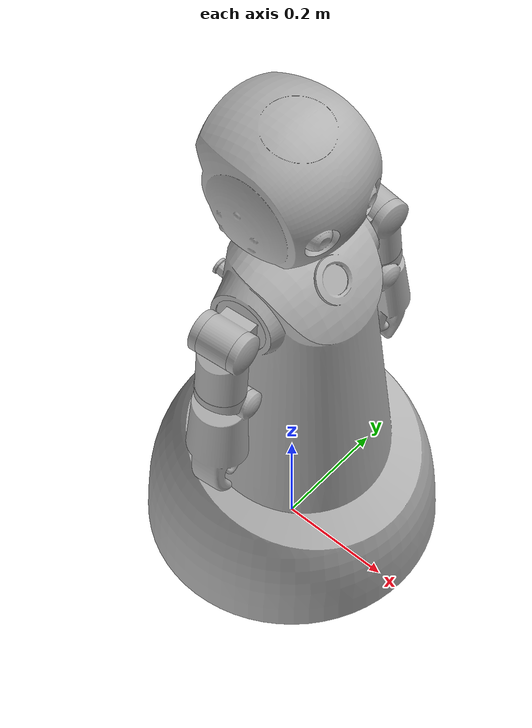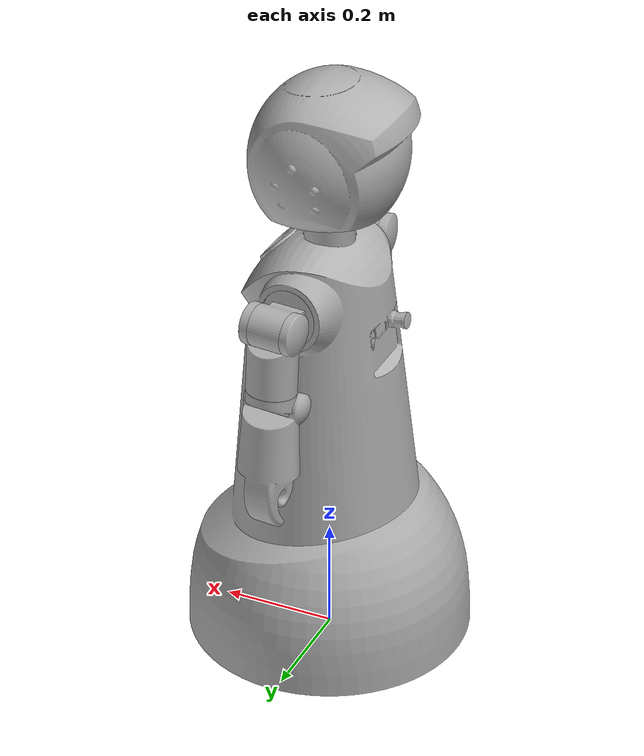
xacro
<?xml version="1.0" ?>
<robot name="robovie_r4" xmlns:xacro="http://www.ros.org/wiki/xacro">

<xacro:include filename="$(find r4_description)/urdf/robovie_r4_base.xacro" />

<!-- to fix robot in gazebo world -->

<!-- World fixed joint-->

<link name="dummy_link" />
<joint name="dummy_joint" type="fixed">
  <origin xyz="0.0 0.0 0.0" rpy="0 0 ${-pi/2}"/>
  <parent link="dummy_link"/>
  <child link="torso_link_r4"/>
</joint>

</robot>

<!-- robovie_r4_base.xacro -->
<robot name="robovie_r4" xmlns:xacro="http://www.ros.org/wiki/xacro">

<xacro:include filename="$(find r4_description)/urdf/materials.xacro" />

<!-- to fix robot in gazebo world -->

<!-- World fixed joint-->

<link name="tcp_left">
  <visual>
    <geometry>
      <box size="0.01 0.01 0.01"/>
    </geometry>
    <material name="red">
      <color rgba="1.0 0.0 0.0 0.6"/>
    </material>
  </visual>
</link>

<joint name="tcp_left_joint" type="fixed">
   <!-- X軸の正方向が前 -->
  <origin xyz="${-0.032-0.003262} ${-0.0375+0.037358} ${-0.168+0.000071}" rpy="0 0 0"/>
  <parent link="l_hand_1"/>
  <child link="tcp_left"/>
</joint>

<link name="tcp_right">
  <visual>
    <geometry>
      <box size="0.01 0.01 0.01"/>
    </geometry>
    <material name="red">
      <color rgba="1.0 0.0 0.0 0.6"/>
    </material>
  </visual>
</link>

<joint name="tcp_right_joint" type="fixed">
   <!-- X軸の正方向が前 -->
  <origin xyz="${0.032-0.003262} ${-0.0375+0.037358} ${-0.168+0.000071}" rpy="0 0 0"/>
  <parent link="r_hand_1"/>
  <child link="tcp_right"/>
</joint>

<link name="torso_link_r4">
  <inertial>
    <origin xyz="0.000614628156240865 0.001148796640096465 0.4251467803392016" rpy="0 0 0"/>
    <mass value="26.157484443567014"/>
    <inertia ixx="2.07336" iyy="2.086701" izz="0.73142" ixy="0.001276" iyz="-0.012697" ixz="-0.003299"/>
  </inertial>
  <visual>
    <origin xyz="0 0 0" rpy="0 0 0"/>
    <geometry>
      <mesh filename="package://r4_description/meshes/torso_link_r4.stl" scale="0.001 0.001 0.001"/>
    </geometry>
    <material name="silver-r4"/>
  </visual>
  <collision>
    <origin xyz="0 0 0" rpy="0 0 0"/>
    <geometry>
      <mesh filename="package://r4_description/meshes/torso_link_r4.stl" scale="0.001 0.001 0.001"/>
    </geometry>
  </collision>
</link>

<link name="l_shoulder_1">
  <inertial>
    <origin xyz="-0.037852630361978945 0.00325917485373633 0.0033240289687475055" rpy="0 0 0"/>
    <mass value="1.3261389056969144"/>
    <inertia ixx="0.001184" iyy="0.002087" izz="0.0021" ixy="7.9e-05" iyz="-7e-06" ixz="8.1e-05"/>
  </inertial>
  <visual>
    <origin xyz="0.134657 -0.011781 -0.696078" rpy="0 0 0"/>
    <geometry>
      <mesh filename="package://r4_description/meshes/l_shoulder_1.stl" scale="0.001 0.001 0.001"/>
    </geometry>
    <material name="silver-r4"/>
  </visual>
  <collision>
    <origin xyz="0.134657 -0.011781 -0.696078" rpy="0 0 0"/>
    <geometry>
      <mesh filename="package://r4_description/meshes/l_shoulder_1.stl" scale="0.001 0.001 0.001"/>
    </geometry>
  </collision>
</link>

<link name="r_shoulder_1">
  <inertial>
    <origin xyz="0.03784353770491708 0.0033633036532929993 0.0033238304731996182" rpy="0 0 0"/>
    <mass value="1.3261389056969144"/>
    <inertia ixx="0.001184" iyy="0.002087" izz="0.0021" ixy="-8e-05" iyz="-7e-06" ixz="-8.1e-05"/>
  </inertial>
  <visual>
    <origin xyz="-0.134657 -0.011781 -0.696078" rpy="0 0 0"/>
    <geometry>
      <mesh filename="package://r4_description/meshes/r_shoulder_1.stl" scale="0.001 0.001 0.001"/>
    </geometry>
    <material name="silver-r4"/>
  </visual>
  <collision>
    <origin xyz="-0.134657 -0.011781 -0.696078" rpy="0 0 0"/>
    <geometry>
      <mesh filename="package://r4_description/meshes/r_shoulder_1.stl" scale="0.001 0.001 0.001"/>
    </geometry>
  </collision>
</link>

<link name="neck_yaw_link_1">
  <inertial>
    <origin xyz="-0.001909747489438639 0.002260196795276822 0.016471266556445152" rpy="0 0 0"/>
    <mass value="0.14692716936201883"/>
    <inertia ixx="0.000101" iyy="5.2e-05" izz="8.9e-05" ixy="-0.0" iyz="0.0" ixz="0.0"/>
  </inertial>
  <visual>
    <origin xyz="-0.0 -0.0 -0.823" rpy="0 0 0"/>
    <geometry>
      <mesh filename="package://r4_description/meshes/neck_yaw_link_1.stl" scale="0.001 0.001 0.001"/>
    </geometry>
    <material name="silver-r4"/>
  </visual>
  <collision>
    <origin xyz="-0.0 -0.0 -0.823" rpy="0 0 0"/>
    <geometry>
      <mesh filename="package://r4_description/meshes/neck_yaw_link_1.stl" scale="0.001 0.001 0.001"/>
    </geometry>
  </collision>
</link>

<link name="neck_roll_link_1">
  <inertial>
    <origin xyz="0.0005064508038095865 -0.0221821481261072 0.01791091802139455" rpy="0 0 0"/>
    <mass value="1.1480815935567241"/>
    <inertia ixx="0.000617" iyy="0.000684" izz="0.000457" ixy="-0.0" iyz="1e-06" ixz="0.0"/>
  </inertial>
  <visual>
    <origin xyz="0.0 -0.0245 -0.85" rpy="0 0 0"/>
    <geometry>
      <mesh filename="package://r4_description/meshes/neck_roll_link_1.stl" scale="0.001 0.001 0.001"/>
    </geometry>
    <material name="silver-r4"/>
  </visual>
  <collision>
    <origin xyz="0.0 -0.0245 -0.85" rpy="0 0 0"/>
    <geometry>
      <mesh filename="package://r4_description/meshes/neck_roll_link_1.stl" scale="0.001 0.001 0.001"/>
    </geometry>
  </collision>
</link>

<link name="head_1">
  <inertial>
    <origin xyz="-0.026505019942840876 -0.0016225754455137511 0.09761714285669354" rpy="0 0 0"/>
    <mass value="7.576311537618501"/>
    <inertia ixx="0.051342" iyy="0.073001" izz="0.076119" ixy="4e-06" iyz="0.00224" ixz="-7e-06"/>
  </inertial>
  <visual>
    <origin xyz="-0.0265 -0.0 -0.85" rpy="0 0 0"/>
    <geometry>
      <mesh filename="package://r4_description/meshes/head_1.stl" scale="0.001 0.001 0.001"/>
    </geometry>
    <material name="silver-r4"/>
  </visual>
  <collision>
    <origin xyz="-0.0265 -0.0 -0.85" rpy="0 0 0"/>
    <geometry>
      <mesh filename="package://r4_description/meshes/head_1.stl" scale="0.001 0.001 0.001"/>
    </geometry>
  </collision>
</link>

<link name="l_arm_1">
  <inertial>
    <origin xyz="-0.01171737181229937 -0.029404568328405267 -0.05915031814076621" rpy="0 0 0"/>
    <mass value="0.7243594855307846"/>
    <inertia ixx="0.002358" iyy="0.001919" izz="0.001152" ixy="-3.9e-05" iyz="1.3e-05" ixz="-0.00016"/>
  </inertial>
  <visual>
    <origin xyz="0.182292 -0.015949 -0.700261" rpy="0 0 0"/>
    <geometry>
      <mesh filename="package://r4_description/meshes/l_arm_1.stl" scale="0.001 0.001 0.001"/>
    </geometry>
    <material name="silver-r4"/>
  </visual>
  <collision>
    <origin xyz="0.182292 -0.015949 -0.700261" rpy="0 0 0"/>
    <geometry>
      <mesh filename="package://r4_description/meshes/l_arm_1.stl" scale="0.001 0.001 0.001"/>
    </geometry>
  </collision>
</link>

<link name="r_arm_1">
  <inertial>
    <origin xyz="0.011717377079669272 -0.0294046286501487 -0.059150318025778414" rpy="0 0 0"/>
    <mass value="0.7243594855307846"/>
    <inertia ixx="0.002358" iyy="0.001919" izz="0.001152" ixy="3.9e-05" iyz="1.3e-05" ixz="0.00016"/>
  </inertial>
  <visual>
    <origin xyz="-0.182292 -0.015949 -0.700261" rpy="0 0 0"/>
    <geometry>
      <mesh filename="package://r4_description/meshes/r_arm_1.stl" scale="0.001 0.001 0.001"/>
    </geometry>
    <material name="silver-r4"/>
  </visual>
  <collision>
    <origin xyz="-0.182292 -0.015949 -0.700261" rpy="0 0 0"/>
    <geometry>
      <mesh filename="package://r4_description/meshes/r_arm_1.stl" scale="0.001 0.001 0.001"/>
    </geometry>
  </collision>
</link>

<link name="l_elbow_1">
  <inertial>
    <origin xyz="0.013707025391952676 -0.0012488485865315528 -0.02739437843448611" rpy="0 0 0"/>
    <mass value="1.3817415156964064"/>
    <inertia ixx="0.000976" iyy="0.000677" izz="0.001046" ixy="-2.6e-05" iyz="-8e-06" ixz="0.000103"/>
  </inertial>
  <visual>
    <origin xyz="0.192122 -0.016592 -0.587692" rpy="0 0 0"/>
    <geometry>
      <mesh filename="package://r4_description/meshes/l_elbow_1.stl" scale="0.001 0.001 0.001"/>
    </geometry>
    <material name="silver-r4"/>
  </visual>
  <collision>
    <origin xyz="0.192122 -0.016592 -0.587692" rpy="0 0 0"/>
    <geometry>
      <mesh filename="package://r4_description/meshes/l_elbow_1.stl" scale="0.001 0.001 0.001"/>
    </geometry>
  </collision>
</link>

<link name="r_elbow_1">
  <inertial>
    <origin xyz="-0.01370702179735625 -0.001248889751733982 -0.027394378356015325" rpy="0 0 0"/>
    <mass value="1.3817415156964064"/>
    <inertia ixx="0.000976" iyy="0.000677" izz="0.001046" ixy="2.6e-05" iyz="-8e-06" ixz="-0.000103"/>
  </inertial>
  <visual>
    <origin xyz="-0.192122 -0.016592 -0.587692" rpy="0 0 0"/>
    <geometry>
      <mesh filename="package://r4_description/meshes/r_elbow_1.stl" scale="0.001 0.001 0.001"/>
    </geometry>
    <material name="silver-r4"/>
  </visual>
  <collision>
    <origin xyz="-0.192122 -0.016592 -0.587692" rpy="0 0 0"/>
    <geometry>
      <mesh filename="package://r4_description/meshes/r_elbow_1.stl" scale="0.001 0.001 0.001"/>
    </geometry>
  </collision>
</link>

<link name="l_hand_1">
  <inertial>
    <origin xyz="-0.03076625385048895 -0.03513212246685853 -0.09224704680541085" rpy="0 0 0"/>
    <mass value="1.3532058766017583"/>
    <inertia ixx="0.005572" iyy="0.005107" izz="0.002078" ixy="-4.2e-05" iyz="3.8e-05" ixz="-0.000499"/>
  </inertial>
  <visual>
    <origin xyz="0.174797 -0.015021 -0.557059" rpy="0 0 0"/>
    <geometry>
      <mesh filename="package://r4_description/meshes/l_hand_1.stl" scale="0.001 0.001 0.001"/>
    </geometry>
    <material name="silver-r4"/>
  </visual>
  <collision>
    <origin xyz="0.174797 -0.015021 -0.557059" rpy="0 0 0"/>
    <geometry>
      <mesh filename="package://r4_description/meshes/l_hand_1.stl" scale="0.001 0.001 0.001"/>
    </geometry>
  </collision>
</link>

<link name="r_hand_1">
  <inertial>
    <origin xyz="0.030766274993907133 -0.03513236460057082 -0.09224704634384401" rpy="0 0 0"/>
    <mass value="1.3532058766017574"/>
    <inertia ixx="0.005572" iyy="0.005107" izz="0.002078" ixy="4.2e-05" iyz="3.8e-05" ixz="0.000499"/>
  </inertial>
  <visual>
    <origin xyz="-0.174797 -0.015021 -0.557059" rpy="0 0 0"/>
    <geometry>
      <mesh filename="package://r4_description/meshes/r_hand_1.stl" scale="0.001 0.001 0.001"/>
    </geometry>
    <material name="silver-r4"/>
  </visual>
  <collision>
    <origin xyz="-0.174797 -0.015021 -0.557059" rpy="0 0 0"/>
    <geometry>
      <mesh filename="package://r4_description/meshes/r_hand_1.stl" scale="0.001 0.001 0.001"/>
    </geometry>
  </collision>
</link>

<!-- joints *****************************************-->
<joint name="l_shoulder_pitch" type="revolute">
  <origin xyz="-0.134657 0.011781 0.696078" rpy="0 0 0"/>
  <parent link="torso_link_r4"/>
  <child link="l_shoulder_1"/>
  <axis xyz="-0.992404 0.086824 0.087156"/>
  <limit upper="${70*pi/180}" lower="${-250*pi/180}" effort="100" velocity="100"/>
</joint>

<joint name="l_shoulder_roll" type="revolute">
  <origin xyz="${-0.045008-0.002627} ${0.034253-0.030085} ${0.004126+0.000057}" rpy="0 0 0"/>
  <parent link="l_shoulder_1"/>
  <child link="l_arm_1"/>
  <axis xyz="0.08699 0.996207 -0.001899"/>
  <limit upper="${170*pi/180}" lower="${-10*pi/180}" effort="100" velocity="100"/>
</joint>

<joint name="l_elbow_yaw" type="revolute">
  <origin xyz="${-0.012457+0.002627} ${-0.029442+0.030085} ${-0.112512-0.000057}" rpy="0 0 0"/>
  <parent link="l_arm_1"/>
  <child link="l_elbow_1"/>
  <axis xyz="-0.08699 0.005697 -0.996193"/>
  <limit upper="${pi/2}" lower="${-pi/2}" effort="100" velocity="100"/>
</joint>

<joint name="l_elbow_bend" type="revolute">
  <origin xyz="${0.020587-0.003262} ${0.035787-0.037358} ${-0.030704-0.000071}" rpy="0 0 0"/>
  <parent link="l_elbow_1"/>
  <child link="l_hand_1"/>
  <axis xyz="0.08699 0.996207 -0.001899"/>
  <limit upper="${5*pi/180}" lower="${-125*pi/180}" effort="100" velocity="100"/>
</joint>

<joint name="r_shoulder_pitch" type="revolute">
  <origin xyz="0.134657 0.011781 0.696078" rpy="0 0 0"/>
  <parent link="torso_link_r4"/>
  <child link="r_shoulder_1"/>
  <axis xyz="0.992404 0.086824 0.087156"/>
  <limit upper="${250*pi/180}" lower="${-70*pi/180}" effort="100" velocity="100"/>
</joint>

<joint name="r_shoulder_roll" type="revolute">
  <origin xyz="${0.045008+0.002627} ${0.034253-0.030085} ${0.004126+0.000057}" rpy="0 0 0"/>
  <parent link="r_shoulder_1"/>
  <child link="r_arm_1"/>
  <axis xyz="-0.08699 0.996207 -0.001899"/>
  <limit lower="${-170*pi/180}" upper="${10*pi/180}" effort="100" velocity="100"/>
</joint>

<joint name="r_elbow_yaw" type="revolute">
  <origin xyz="${0.012457-0.002627} ${-0.029442+0.030085} ${-0.112512-0.000057}" rpy="0 0 0"/>
  <parent link="r_arm_1"/>
  <child link="r_elbow_1"/>
  <axis xyz="0.08699 0.005697 -0.996193"/>
  <limit upper="${pi/2}" lower="${-pi/2}" effort="100" velocity="100"/>
</joint>

<joint name="r_elbow_bend" type="revolute">
  <origin xyz="${-0.020587+0.003262} ${0.035787-0.037358} ${-0.030704-0.000071}" rpy="0 0 0"/>
  <parent link="r_elbow_1"/>
  <child link="r_hand_1"/>
  <axis xyz="-0.08699 0.996207 -0.001899"/>
  <limit upper="${125*pi/180}" lower="${-5*pi/180}" effort="100" velocity="100"/>
</joint>

<joint name="neck_yaw" type="revolute">
  <origin xyz="0.0 0.0 0.823" rpy="0 0 0"/>
  <parent link="torso_link_r4"/>
  <child link="neck_yaw_link_1"/>
  <axis xyz="0.0 0.0 1.0"/>
  <limit upper="${pi/2}" lower="${-pi/2}" effort="100" velocity="100"/>
</joint>

<joint name="neck_roll" type="revolute">
  <origin xyz="-0.0 0.0245 0.027" rpy="0 0 0"/>
  <parent link="neck_yaw_link_1"/>
  <child link="neck_roll_link_1"/>
  <axis xyz="-0.0 1.0 0.0"/>
  <limit upper="${15*pi/180}" lower="${-15*pi/180}" effort="100" velocity="100"/>
</joint>

<joint name="neck_pitch" type="revolute">
  <origin xyz="0.0265 -0.0245 0.0" rpy="0 0 0"/>
  <parent link="neck_roll_link_1"/>
  <child link="head_1"/>
  <axis xyz="-1.0 0.0 0.0"/>
  <limit upper="${15*pi/180}" lower="${-30*pi/180}" effort="100" velocity="100"/>
</joint>

</robot>

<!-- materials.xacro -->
<robot name="robovie_r4" xmlns:xacro="http://www.ros.org/wiki/xacro" >

<material name="silver-r4">
  <color rgba="0.700 0.700 0.700 1.000"/>
</material>

</robot>
